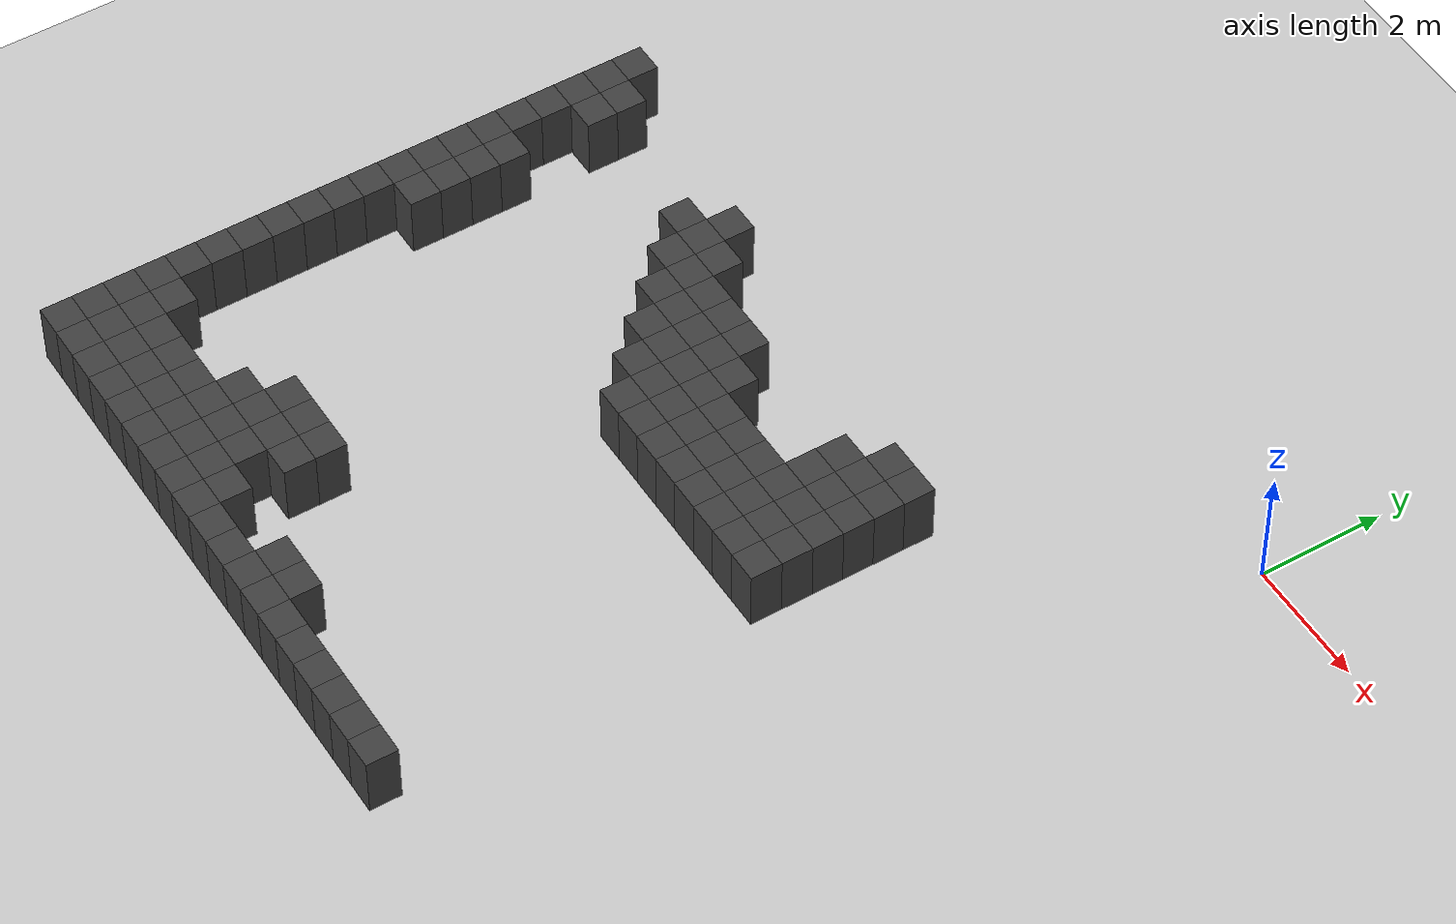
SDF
<sdf version="1.7">
 <world name="map_6610">
  <model name="ground_plane">
   <static>true</static>
   <link name="link">
    <collision name="collision">
     <geometry><plane><normal>0 0 1</normal><size>200 200</size></plane></geometry>
    </collision>
    <visual name="visual">
     <geometry><plane><normal>0 0 1</normal><size>200 200</size></plane></geometry>
     <material><ambient>0.8 0.8 0.8 1</ambient><diffuse>0.8 0.8 0.8 1</diffuse></material>
    </visual>
   </link>
  </model>
  <model name="maze_environment">
   <static>true</static>
   <link name="wall_340">
    <pose>-12.250 -2.750 0.500 0 0 0</pose>
    <collision name="col"><geometry><box><size>0.5 0.5 1.0</size></box></geometry></collision>
    <visual name="vis">
     <geometry><box><size>0.5 0.5 1.0</size></box></geometry>
     <material><ambient>0.15 0.15 0.15 1</ambient><diffuse>0.25 0.25 0.25 1</diffuse></material>
    </visual>
   </link>
   <link name="wall_346">
    <pose>-12.250 -3.250 0.500 0 0 0</pose>
    <collision name="col"><geometry><box><size>0.5 0.5 1.0</size></box></geometry></collision>
    <visual name="vis">
     <geometry><box><size>0.5 0.5 1.0</size></box></geometry>
     <material><ambient>0.15 0.15 0.15 1</ambient><diffuse>0.25 0.25 0.25 1</diffuse></material>
    </visual>
   </link>
   <link name="wall_347">
    <pose>-11.750 -3.250 0.500 0 0 0</pose>
    <collision name="col"><geometry><box><size>0.5 0.5 1.0</size></box></geometry></collision>
    <visual name="vis">
     <geometry><box><size>0.5 0.5 1.0</size></box></geometry>
     <material><ambient>0.15 0.15 0.15 1</ambient><diffuse>0.25 0.25 0.25 1</diffuse></material>
    </visual>
   </link>
   <link name="wall_348">
    <pose>-8.750 -3.250 0.500 0 0 0</pose>
    <collision name="col"><geometry><box><size>0.5 0.5 1.0</size></box></geometry></collision>
    <visual name="vis">
     <geometry><box><size>0.5 0.5 1.0</size></box></geometry>
     <material><ambient>0.15 0.15 0.15 1</ambient><diffuse>0.25 0.25 0.25 1</diffuse></material>
    </visual>
   </link>
   <link name="wall_354">
    <pose>-12.250 -3.750 0.500 0 0 0</pose>
    <collision name="col"><geometry><box><size>0.5 0.5 1.0</size></box></geometry></collision>
    <visual name="vis">
     <geometry><box><size>0.5 0.5 1.0</size></box></geometry>
     <material><ambient>0.15 0.15 0.15 1</ambient><diffuse>0.25 0.25 0.25 1</diffuse></material>
    </visual>
   </link>
   <link name="wall_355">
    <pose>-11.750 -3.750 0.500 0 0 0</pose>
    <collision name="col"><geometry><box><size>0.5 0.5 1.0</size></box></geometry></collision>
    <visual name="vis">
     <geometry><box><size>0.5 0.5 1.0</size></box></geometry>
     <material><ambient>0.15 0.15 0.15 1</ambient><diffuse>0.25 0.25 0.25 1</diffuse></material>
    </visual>
   </link>
   <link name="wall_356">
    <pose>-9.250 -3.750 0.500 0 0 0</pose>
    <collision name="col"><geometry><box><size>0.5 0.5 1.0</size></box></geometry></collision>
    <visual name="vis">
     <geometry><box><size>0.5 0.5 1.0</size></box></geometry>
     <material><ambient>0.15 0.15 0.15 1</ambient><diffuse>0.25 0.25 0.25 1</diffuse></material>
    </visual>
   </link>
   <link name="wall_357">
    <pose>-8.750 -3.750 0.500 0 0 0</pose>
    <collision name="col"><geometry><box><size>0.5 0.5 1.0</size></box></geometry></collision>
    <visual name="vis">
     <geometry><box><size>0.5 0.5 1.0</size></box></geometry>
     <material><ambient>0.15 0.15 0.15 1</ambient><diffuse>0.25 0.25 0.25 1</diffuse></material>
    </visual>
   </link>
   <link name="wall_358">
    <pose>-8.250 -3.750 0.500 0 0 0</pose>
    <collision name="col"><geometry><box><size>0.5 0.5 1.0</size></box></geometry></collision>
    <visual name="vis">
     <geometry><box><size>0.5 0.5 1.0</size></box></geometry>
     <material><ambient>0.15 0.15 0.15 1</ambient><diffuse>0.25 0.25 0.25 1</diffuse></material>
    </visual>
   </link>
   <link name="wall_359">
    <pose>-3.750 -3.750 0.500 0 0 0</pose>
    <collision name="col"><geometry><box><size>0.5 0.5 1.0</size></box></geometry></collision>
    <visual name="vis">
     <geometry><box><size>0.5 0.5 1.0</size></box></geometry>
     <material><ambient>0.15 0.15 0.15 1</ambient><diffuse>0.25 0.25 0.25 1</diffuse></material>
    </visual>
   </link>
   <link name="wall_360">
    <pose>-3.250 -3.750 0.500 0 0 0</pose>
    <collision name="col"><geometry><box><size>0.5 0.5 1.0</size></box></geometry></collision>
    <visual name="vis">
     <geometry><box><size>0.5 0.5 1.0</size></box></geometry>
     <material><ambient>0.15 0.15 0.15 1</ambient><diffuse>0.25 0.25 0.25 1</diffuse></material>
    </visual>
   </link>
   <link name="wall_366">
    <pose>-12.250 -4.250 0.500 0 0 0</pose>
    <collision name="col"><geometry><box><size>0.5 0.5 1.0</size></box></geometry></collision>
    <visual name="vis">
     <geometry><box><size>0.5 0.5 1.0</size></box></geometry>
     <material><ambient>0.15 0.15 0.15 1</ambient><diffuse>0.25 0.25 0.25 1</diffuse></material>
    </visual>
   </link>
   <link name="wall_367">
    <pose>-8.750 -4.250 0.500 0 0 0</pose>
    <collision name="col"><geometry><box><size>0.5 0.5 1.0</size></box></geometry></collision>
    <visual name="vis">
     <geometry><box><size>0.5 0.5 1.0</size></box></geometry>
     <material><ambient>0.15 0.15 0.15 1</ambient><diffuse>0.25 0.25 0.25 1</diffuse></material>
    </visual>
   </link>
   <link name="wall_368">
    <pose>-8.250 -4.250 0.500 0 0 0</pose>
    <collision name="col"><geometry><box><size>0.5 0.5 1.0</size></box></geometry></collision>
    <visual name="vis">
     <geometry><box><size>0.5 0.5 1.0</size></box></geometry>
     <material><ambient>0.15 0.15 0.15 1</ambient><diffuse>0.25 0.25 0.25 1</diffuse></material>
    </visual>
   </link>
   <link name="wall_369">
    <pose>-7.750 -4.250 0.500 0 0 0</pose>
    <collision name="col"><geometry><box><size>0.5 0.5 1.0</size></box></geometry></collision>
    <visual name="vis">
     <geometry><box><size>0.5 0.5 1.0</size></box></geometry>
     <material><ambient>0.15 0.15 0.15 1</ambient><diffuse>0.25 0.25 0.25 1</diffuse></material>
    </visual>
   </link>
   <link name="wall_370">
    <pose>-7.250 -4.250 0.500 0 0 0</pose>
    <collision name="col"><geometry><box><size>0.5 0.5 1.0</size></box></geometry></collision>
    <visual name="vis">
     <geometry><box><size>0.5 0.5 1.0</size></box></geometry>
     <material><ambient>0.15 0.15 0.15 1</ambient><diffuse>0.25 0.25 0.25 1</diffuse></material>
    </visual>
   </link>
   <link name="wall_371">
    <pose>-6.750 -4.250 0.500 0 0 0</pose>
    <collision name="col"><geometry><box><size>0.5 0.5 1.0</size></box></geometry></collision>
    <visual name="vis">
     <geometry><box><size>0.5 0.5 1.0</size></box></geometry>
     <material><ambient>0.15 0.15 0.15 1</ambient><diffuse>0.25 0.25 0.25 1</diffuse></material>
    </visual>
   </link>
   <link name="wall_372">
    <pose>-4.250 -4.250 0.500 0 0 0</pose>
    <collision name="col"><geometry><box><size>0.5 0.5 1.0</size></box></geometry></collision>
    <visual name="vis">
     <geometry><box><size>0.5 0.5 1.0</size></box></geometry>
     <material><ambient>0.15 0.15 0.15 1</ambient><diffuse>0.25 0.25 0.25 1</diffuse></material>
    </visual>
   </link>
   <link name="wall_373">
    <pose>-3.750 -4.250 0.500 0 0 0</pose>
    <collision name="col"><geometry><box><size>0.5 0.5 1.0</size></box></geometry></collision>
    <visual name="vis">
     <geometry><box><size>0.5 0.5 1.0</size></box></geometry>
     <material><ambient>0.15 0.15 0.15 1</ambient><diffuse>0.25 0.25 0.25 1</diffuse></material>
    </visual>
   </link>
   <link name="wall_374">
    <pose>-3.250 -4.250 0.500 0 0 0</pose>
    <collision name="col"><geometry><box><size>0.5 0.5 1.0</size></box></geometry></collision>
    <visual name="vis">
     <geometry><box><size>0.5 0.5 1.0</size></box></geometry>
     <material><ambient>0.15 0.15 0.15 1</ambient><diffuse>0.25 0.25 0.25 1</diffuse></material>
    </visual>
   </link>
   <link name="wall_381">
    <pose>-12.250 -4.750 0.500 0 0 0</pose>
    <collision name="col"><geometry><box><size>0.5 0.5 1.0</size></box></geometry></collision>
    <visual name="vis">
     <geometry><box><size>0.5 0.5 1.0</size></box></geometry>
     <material><ambient>0.15 0.15 0.15 1</ambient><diffuse>0.25 0.25 0.25 1</diffuse></material>
    </visual>
   </link>
   <link name="wall_382">
    <pose>-8.250 -4.750 0.500 0 0 0</pose>
    <collision name="col"><geometry><box><size>0.5 0.5 1.0</size></box></geometry></collision>
    <visual name="vis">
     <geometry><box><size>0.5 0.5 1.0</size></box></geometry>
     <material><ambient>0.15 0.15 0.15 1</ambient><diffuse>0.25 0.25 0.25 1</diffuse></material>
    </visual>
   </link>
   <link name="wall_383">
    <pose>-7.750 -4.750 0.500 0 0 0</pose>
    <collision name="col"><geometry><box><size>0.5 0.5 1.0</size></box></geometry></collision>
    <visual name="vis">
     <geometry><box><size>0.5 0.5 1.0</size></box></geometry>
     <material><ambient>0.15 0.15 0.15 1</ambient><diffuse>0.25 0.25 0.25 1</diffuse></material>
    </visual>
   </link>
   <link name="wall_384">
    <pose>-7.250 -4.750 0.500 0 0 0</pose>
    <collision name="col"><geometry><box><size>0.5 0.5 1.0</size></box></geometry></collision>
    <visual name="vis">
     <geometry><box><size>0.5 0.5 1.0</size></box></geometry>
     <material><ambient>0.15 0.15 0.15 1</ambient><diffuse>0.25 0.25 0.25 1</diffuse></material>
    </visual>
   </link>
   <link name="wall_385">
    <pose>-6.750 -4.750 0.500 0 0 0</pose>
    <collision name="col"><geometry><box><size>0.5 0.5 1.0</size></box></geometry></collision>
    <visual name="vis">
     <geometry><box><size>0.5 0.5 1.0</size></box></geometry>
     <material><ambient>0.15 0.15 0.15 1</ambient><diffuse>0.25 0.25 0.25 1</diffuse></material>
    </visual>
   </link>
   <link name="wall_386">
    <pose>-6.250 -4.750 0.500 0 0 0</pose>
    <collision name="col"><geometry><box><size>0.5 0.5 1.0</size></box></geometry></collision>
    <visual name="vis">
     <geometry><box><size>0.5 0.5 1.0</size></box></geometry>
     <material><ambient>0.15 0.15 0.15 1</ambient><diffuse>0.25 0.25 0.25 1</diffuse></material>
    </visual>
   </link>
   <link name="wall_387">
    <pose>-4.250 -4.750 0.500 0 0 0</pose>
    <collision name="col"><geometry><box><size>0.5 0.5 1.0</size></box></geometry></collision>
    <visual name="vis">
     <geometry><box><size>0.5 0.5 1.0</size></box></geometry>
     <material><ambient>0.15 0.15 0.15 1</ambient><diffuse>0.25 0.25 0.25 1</diffuse></material>
    </visual>
   </link>
   <link name="wall_388">
    <pose>-3.750 -4.750 0.500 0 0 0</pose>
    <collision name="col"><geometry><box><size>0.5 0.5 1.0</size></box></geometry></collision>
    <visual name="vis">
     <geometry><box><size>0.5 0.5 1.0</size></box></geometry>
     <material><ambient>0.15 0.15 0.15 1</ambient><diffuse>0.25 0.25 0.25 1</diffuse></material>
    </visual>
   </link>
   <link name="wall_389">
    <pose>-3.250 -4.750 0.500 0 0 0</pose>
    <collision name="col"><geometry><box><size>0.5 0.5 1.0</size></box></geometry></collision>
    <visual name="vis">
     <geometry><box><size>0.5 0.5 1.0</size></box></geometry>
     <material><ambient>0.15 0.15 0.15 1</ambient><diffuse>0.25 0.25 0.25 1</diffuse></material>
    </visual>
   </link>
   <link name="wall_397">
    <pose>-12.250 -5.250 0.500 0 0 0</pose>
    <collision name="col"><geometry><box><size>0.5 0.5 1.0</size></box></geometry></collision>
    <visual name="vis">
     <geometry><box><size>0.5 0.5 1.0</size></box></geometry>
     <material><ambient>0.15 0.15 0.15 1</ambient><diffuse>0.25 0.25 0.25 1</diffuse></material>
    </visual>
   </link>
   <link name="wall_398">
    <pose>-11.750 -5.250 0.500 0 0 0</pose>
    <collision name="col"><geometry><box><size>0.5 0.5 1.0</size></box></geometry></collision>
    <visual name="vis">
     <geometry><box><size>0.5 0.5 1.0</size></box></geometry>
     <material><ambient>0.15 0.15 0.15 1</ambient><diffuse>0.25 0.25 0.25 1</diffuse></material>
    </visual>
   </link>
   <link name="wall_399">
    <pose>-7.750 -5.250 0.500 0 0 0</pose>
    <collision name="col"><geometry><box><size>0.5 0.5 1.0</size></box></geometry></collision>
    <visual name="vis">
     <geometry><box><size>0.5 0.5 1.0</size></box></geometry>
     <material><ambient>0.15 0.15 0.15 1</ambient><diffuse>0.25 0.25 0.25 1</diffuse></material>
    </visual>
   </link>
   <link name="wall_400">
    <pose>-7.250 -5.250 0.500 0 0 0</pose>
    <collision name="col"><geometry><box><size>0.5 0.5 1.0</size></box></geometry></collision>
    <visual name="vis">
     <geometry><box><size>0.5 0.5 1.0</size></box></geometry>
     <material><ambient>0.15 0.15 0.15 1</ambient><diffuse>0.25 0.25 0.25 1</diffuse></material>
    </visual>
   </link>
   <link name="wall_401">
    <pose>-6.750 -5.250 0.500 0 0 0</pose>
    <collision name="col"><geometry><box><size>0.5 0.5 1.0</size></box></geometry></collision>
    <visual name="vis">
     <geometry><box><size>0.5 0.5 1.0</size></box></geometry>
     <material><ambient>0.15 0.15 0.15 1</ambient><diffuse>0.25 0.25 0.25 1</diffuse></material>
    </visual>
   </link>
   <link name="wall_402">
    <pose>-6.250 -5.250 0.500 0 0 0</pose>
    <collision name="col"><geometry><box><size>0.5 0.5 1.0</size></box></geometry></collision>
    <visual name="vis">
     <geometry><box><size>0.5 0.5 1.0</size></box></geometry>
     <material><ambient>0.15 0.15 0.15 1</ambient><diffuse>0.25 0.25 0.25 1</diffuse></material>
    </visual>
   </link>
   <link name="wall_403">
    <pose>-5.750 -5.250 0.500 0 0 0</pose>
    <collision name="col"><geometry><box><size>0.5 0.5 1.0</size></box></geometry></collision>
    <visual name="vis">
     <geometry><box><size>0.5 0.5 1.0</size></box></geometry>
     <material><ambient>0.15 0.15 0.15 1</ambient><diffuse>0.25 0.25 0.25 1</diffuse></material>
    </visual>
   </link>
   <link name="wall_404">
    <pose>-5.250 -5.250 0.500 0 0 0</pose>
    <collision name="col"><geometry><box><size>0.5 0.5 1.0</size></box></geometry></collision>
    <visual name="vis">
     <geometry><box><size>0.5 0.5 1.0</size></box></geometry>
     <material><ambient>0.15 0.15 0.15 1</ambient><diffuse>0.25 0.25 0.25 1</diffuse></material>
    </visual>
   </link>
   <link name="wall_405">
    <pose>-4.750 -5.250 0.500 0 0 0</pose>
    <collision name="col"><geometry><box><size>0.5 0.5 1.0</size></box></geometry></collision>
    <visual name="vis">
     <geometry><box><size>0.5 0.5 1.0</size></box></geometry>
     <material><ambient>0.15 0.15 0.15 1</ambient><diffuse>0.25 0.25 0.25 1</diffuse></material>
    </visual>
   </link>
   <link name="wall_406">
    <pose>-4.250 -5.250 0.500 0 0 0</pose>
    <collision name="col"><geometry><box><size>0.5 0.5 1.0</size></box></geometry></collision>
    <visual name="vis">
     <geometry><box><size>0.5 0.5 1.0</size></box></geometry>
     <material><ambient>0.15 0.15 0.15 1</ambient><diffuse>0.25 0.25 0.25 1</diffuse></material>
    </visual>
   </link>
   <link name="wall_407">
    <pose>-3.750 -5.250 0.500 0 0 0</pose>
    <collision name="col"><geometry><box><size>0.5 0.5 1.0</size></box></geometry></collision>
    <visual name="vis">
     <geometry><box><size>0.5 0.5 1.0</size></box></geometry>
     <material><ambient>0.15 0.15 0.15 1</ambient><diffuse>0.25 0.25 0.25 1</diffuse></material>
    </visual>
   </link>
   <link name="wall_408">
    <pose>-3.250 -5.250 0.500 0 0 0</pose>
    <collision name="col"><geometry><box><size>0.5 0.5 1.0</size></box></geometry></collision>
    <visual name="vis">
     <geometry><box><size>0.5 0.5 1.0</size></box></geometry>
     <material><ambient>0.15 0.15 0.15 1</ambient><diffuse>0.25 0.25 0.25 1</diffuse></material>
    </visual>
   </link>
   <link name="wall_418">
    <pose>-12.250 -5.750 0.500 0 0 0</pose>
    <collision name="col"><geometry><box><size>0.5 0.5 1.0</size></box></geometry></collision>
    <visual name="vis">
     <geometry><box><size>0.5 0.5 1.0</size></box></geometry>
     <material><ambient>0.15 0.15 0.15 1</ambient><diffuse>0.25 0.25 0.25 1</diffuse></material>
    </visual>
   </link>
   <link name="wall_419">
    <pose>-11.750 -5.750 0.500 0 0 0</pose>
    <collision name="col"><geometry><box><size>0.5 0.5 1.0</size></box></geometry></collision>
    <visual name="vis">
     <geometry><box><size>0.5 0.5 1.0</size></box></geometry>
     <material><ambient>0.15 0.15 0.15 1</ambient><diffuse>0.25 0.25 0.25 1</diffuse></material>
    </visual>
   </link>
   <link name="wall_420">
    <pose>-7.250 -5.750 0.500 0 0 0</pose>
    <collision name="col"><geometry><box><size>0.5 0.5 1.0</size></box></geometry></collision>
    <visual name="vis">
     <geometry><box><size>0.5 0.5 1.0</size></box></geometry>
     <material><ambient>0.15 0.15 0.15 1</ambient><diffuse>0.25 0.25 0.25 1</diffuse></material>
    </visual>
   </link>
   <link name="wall_421">
    <pose>-6.750 -5.750 0.500 0 0 0</pose>
    <collision name="col"><geometry><box><size>0.5 0.5 1.0</size></box></geometry></collision>
    <visual name="vis">
     <geometry><box><size>0.5 0.5 1.0</size></box></geometry>
     <material><ambient>0.15 0.15 0.15 1</ambient><diffuse>0.25 0.25 0.25 1</diffuse></material>
    </visual>
   </link>
   <link name="wall_422">
    <pose>-6.250 -5.750 0.500 0 0 0</pose>
    <collision name="col"><geometry><box><size>0.5 0.5 1.0</size></box></geometry></collision>
    <visual name="vis">
     <geometry><box><size>0.5 0.5 1.0</size></box></geometry>
     <material><ambient>0.15 0.15 0.15 1</ambient><diffuse>0.25 0.25 0.25 1</diffuse></material>
    </visual>
   </link>
   <link name="wall_423">
    <pose>-5.750 -5.750 0.500 0 0 0</pose>
    <collision name="col"><geometry><box><size>0.5 0.5 1.0</size></box></geometry></collision>
    <visual name="vis">
     <geometry><box><size>0.5 0.5 1.0</size></box></geometry>
     <material><ambient>0.15 0.15 0.15 1</ambient><diffuse>0.25 0.25 0.25 1</diffuse></material>
    </visual>
   </link>
   <link name="wall_424">
    <pose>-5.250 -5.750 0.500 0 0 0</pose>
    <collision name="col"><geometry><box><size>0.5 0.5 1.0</size></box></geometry></collision>
    <visual name="vis">
     <geometry><box><size>0.5 0.5 1.0</size></box></geometry>
     <material><ambient>0.15 0.15 0.15 1</ambient><diffuse>0.25 0.25 0.25 1</diffuse></material>
    </visual>
   </link>
   <link name="wall_425">
    <pose>-4.750 -5.750 0.500 0 0 0</pose>
    <collision name="col"><geometry><box><size>0.5 0.5 1.0</size></box></geometry></collision>
    <visual name="vis">
     <geometry><box><size>0.5 0.5 1.0</size></box></geometry>
     <material><ambient>0.15 0.15 0.15 1</ambient><diffuse>0.25 0.25 0.25 1</diffuse></material>
    </visual>
   </link>
   <link name="wall_426">
    <pose>-4.250 -5.750 0.500 0 0 0</pose>
    <collision name="col"><geometry><box><size>0.5 0.5 1.0</size></box></geometry></collision>
    <visual name="vis">
     <geometry><box><size>0.5 0.5 1.0</size></box></geometry>
     <material><ambient>0.15 0.15 0.15 1</ambient><diffuse>0.25 0.25 0.25 1</diffuse></material>
    </visual>
   </link>
   <link name="wall_427">
    <pose>-3.750 -5.750 0.500 0 0 0</pose>
    <collision name="col"><geometry><box><size>0.5 0.5 1.0</size></box></geometry></collision>
    <visual name="vis">
     <geometry><box><size>0.5 0.5 1.0</size></box></geometry>
     <material><ambient>0.15 0.15 0.15 1</ambient><diffuse>0.25 0.25 0.25 1</diffuse></material>
    </visual>
   </link>
   <link name="wall_428">
    <pose>-3.250 -5.750 0.500 0 0 0</pose>
    <collision name="col"><geometry><box><size>0.5 0.5 1.0</size></box></geometry></collision>
    <visual name="vis">
     <geometry><box><size>0.5 0.5 1.0</size></box></geometry>
     <material><ambient>0.15 0.15 0.15 1</ambient><diffuse>0.25 0.25 0.25 1</diffuse></material>
    </visual>
   </link>
   <link name="wall_438">
    <pose>-12.250 -6.250 0.500 0 0 0</pose>
    <collision name="col"><geometry><box><size>0.5 0.5 1.0</size></box></geometry></collision>
    <visual name="vis">
     <geometry><box><size>0.5 0.5 1.0</size></box></geometry>
     <material><ambient>0.15 0.15 0.15 1</ambient><diffuse>0.25 0.25 0.25 1</diffuse></material>
    </visual>
   </link>
   <link name="wall_439">
    <pose>-11.750 -6.250 0.500 0 0 0</pose>
    <collision name="col"><geometry><box><size>0.5 0.5 1.0</size></box></geometry></collision>
    <visual name="vis">
     <geometry><box><size>0.5 0.5 1.0</size></box></geometry>
     <material><ambient>0.15 0.15 0.15 1</ambient><diffuse>0.25 0.25 0.25 1</diffuse></material>
    </visual>
   </link>
   <link name="wall_440">
    <pose>-6.750 -6.250 0.500 0 0 0</pose>
    <collision name="col"><geometry><box><size>0.5 0.5 1.0</size></box></geometry></collision>
    <visual name="vis">
     <geometry><box><size>0.5 0.5 1.0</size></box></geometry>
     <material><ambient>0.15 0.15 0.15 1</ambient><diffuse>0.25 0.25 0.25 1</diffuse></material>
    </visual>
   </link>
   <link name="wall_441">
    <pose>-6.250 -6.250 0.500 0 0 0</pose>
    <collision name="col"><geometry><box><size>0.5 0.5 1.0</size></box></geometry></collision>
    <visual name="vis">
     <geometry><box><size>0.5 0.5 1.0</size></box></geometry>
     <material><ambient>0.15 0.15 0.15 1</ambient><diffuse>0.25 0.25 0.25 1</diffuse></material>
    </visual>
   </link>
   <link name="wall_442">
    <pose>-5.750 -6.250 0.500 0 0 0</pose>
    <collision name="col"><geometry><box><size>0.5 0.5 1.0</size></box></geometry></collision>
    <visual name="vis">
     <geometry><box><size>0.5 0.5 1.0</size></box></geometry>
     <material><ambient>0.15 0.15 0.15 1</ambient><diffuse>0.25 0.25 0.25 1</diffuse></material>
    </visual>
   </link>
   <link name="wall_443">
    <pose>-5.250 -6.250 0.500 0 0 0</pose>
    <collision name="col"><geometry><box><size>0.5 0.5 1.0</size></box></geometry></collision>
    <visual name="vis">
     <geometry><box><size>0.5 0.5 1.0</size></box></geometry>
     <material><ambient>0.15 0.15 0.15 1</ambient><diffuse>0.25 0.25 0.25 1</diffuse></material>
    </visual>
   </link>
   <link name="wall_444">
    <pose>-4.750 -6.250 0.500 0 0 0</pose>
    <collision name="col"><geometry><box><size>0.5 0.5 1.0</size></box></geometry></collision>
    <visual name="vis">
     <geometry><box><size>0.5 0.5 1.0</size></box></geometry>
     <material><ambient>0.15 0.15 0.15 1</ambient><diffuse>0.25 0.25 0.25 1</diffuse></material>
    </visual>
   </link>
   <link name="wall_445">
    <pose>-4.250 -6.250 0.500 0 0 0</pose>
    <collision name="col"><geometry><box><size>0.5 0.5 1.0</size></box></geometry></collision>
    <visual name="vis">
     <geometry><box><size>0.5 0.5 1.0</size></box></geometry>
     <material><ambient>0.15 0.15 0.15 1</ambient><diffuse>0.25 0.25 0.25 1</diffuse></material>
    </visual>
   </link>
   <link name="wall_446">
    <pose>-3.750 -6.250 0.500 0 0 0</pose>
    <collision name="col"><geometry><box><size>0.5 0.5 1.0</size></box></geometry></collision>
    <visual name="vis">
     <geometry><box><size>0.5 0.5 1.0</size></box></geometry>
     <material><ambient>0.15 0.15 0.15 1</ambient><diffuse>0.25 0.25 0.25 1</diffuse></material>
    </visual>
   </link>
   <link name="wall_447">
    <pose>-3.250 -6.250 0.500 0 0 0</pose>
    <collision name="col"><geometry><box><size>0.5 0.5 1.0</size></box></geometry></collision>
    <visual name="vis">
     <geometry><box><size>0.5 0.5 1.0</size></box></geometry>
     <material><ambient>0.15 0.15 0.15 1</ambient><diffuse>0.25 0.25 0.25 1</diffuse></material>
    </visual>
   </link>
   <link name="wall_452">
    <pose>-12.250 -6.750 0.500 0 0 0</pose>
    <collision name="col"><geometry><box><size>0.5 0.5 1.0</size></box></geometry></collision>
    <visual name="vis">
     <geometry><box><size>0.5 0.5 1.0</size></box></geometry>
     <material><ambient>0.15 0.15 0.15 1</ambient><diffuse>0.25 0.25 0.25 1</diffuse></material>
    </visual>
   </link>
   <link name="wall_453">
    <pose>-11.750 -6.750 0.500 0 0 0</pose>
    <collision name="col"><geometry><box><size>0.5 0.5 1.0</size></box></geometry></collision>
    <visual name="vis">
     <geometry><box><size>0.5 0.5 1.0</size></box></geometry>
     <material><ambient>0.15 0.15 0.15 1</ambient><diffuse>0.25 0.25 0.25 1</diffuse></material>
    </visual>
   </link>
   <link name="wall_456">
    <pose>-12.250 -7.250 0.500 0 0 0</pose>
    <collision name="col"><geometry><box><size>0.5 0.5 1.0</size></box></geometry></collision>
    <visual name="vis">
     <geometry><box><size>0.5 0.5 1.0</size></box></geometry>
     <material><ambient>0.15 0.15 0.15 1</ambient><diffuse>0.25 0.25 0.25 1</diffuse></material>
    </visual>
   </link>
   <link name="wall_459">
    <pose>-12.250 -7.750 0.500 0 0 0</pose>
    <collision name="col"><geometry><box><size>0.5 0.5 1.0</size></box></geometry></collision>
    <visual name="vis">
     <geometry><box><size>0.5 0.5 1.0</size></box></geometry>
     <material><ambient>0.15 0.15 0.15 1</ambient><diffuse>0.25 0.25 0.25 1</diffuse></material>
    </visual>
   </link>
   <link name="wall_462">
    <pose>-12.250 -8.250 0.500 0 0 0</pose>
    <collision name="col"><geometry><box><size>0.5 0.5 1.0</size></box></geometry></collision>
    <visual name="vis">
     <geometry><box><size>0.5 0.5 1.0</size></box></geometry>
     <material><ambient>0.15 0.15 0.15 1</ambient><diffuse>0.25 0.25 0.25 1</diffuse></material>
    </visual>
   </link>
   <link name="wall_465">
    <pose>-12.250 -8.750 0.500 0 0 0</pose>
    <collision name="col"><geometry><box><size>0.5 0.5 1.0</size></box></geometry></collision>
    <visual name="vis">
     <geometry><box><size>0.5 0.5 1.0</size></box></geometry>
     <material><ambient>0.15 0.15 0.15 1</ambient><diffuse>0.25 0.25 0.25 1</diffuse></material>
    </visual>
   </link>
   <link name="wall_468">
    <pose>-12.250 -9.250 0.500 0 0 0</pose>
    <collision name="col"><geometry><box><size>0.5 0.5 1.0</size></box></geometry></collision>
    <visual name="vis">
     <geometry><box><size>0.5 0.5 1.0</size></box></geometry>
     <material><ambient>0.15 0.15 0.15 1</ambient><diffuse>0.25 0.25 0.25 1</diffuse></material>
    </visual>
   </link>
   <link name="wall_471">
    <pose>-12.250 -9.750 0.500 0 0 0</pose>
    <collision name="col"><geometry><box><size>0.5 0.5 1.0</size></box></geometry></collision>
    <visual name="vis">
     <geometry><box><size>0.5 0.5 1.0</size></box></geometry>
     <material><ambient>0.15 0.15 0.15 1</ambient><diffuse>0.25 0.25 0.25 1</diffuse></material>
    </visual>
   </link>
   <link name="wall_478">
    <pose>-12.250 -10.250 0.500 0 0 0</pose>
    <collision name="col"><geometry><box><size>0.5 0.5 1.0</size></box></geometry></collision>
    <visual name="vis">
     <geometry><box><size>0.5 0.5 1.0</size></box></geometry>
     <material><ambient>0.15 0.15 0.15 1</ambient><diffuse>0.25 0.25 0.25 1</diffuse></material>
    </visual>
   </link>
   <link name="wall_479">
    <pose>-9.250 -10.250 0.500 0 0 0</pose>
    <collision name="col"><geometry><box><size>0.5 0.5 1.0</size></box></geometry></collision>
    <visual name="vis">
     <geometry><box><size>0.5 0.5 1.0</size></box></geometry>
     <material><ambient>0.15 0.15 0.15 1</ambient><diffuse>0.25 0.25 0.25 1</diffuse></material>
    </visual>
   </link>
   <link name="wall_480">
    <pose>-8.750 -10.250 0.500 0 0 0</pose>
    <collision name="col"><geometry><box><size>0.5 0.5 1.0</size></box></geometry></collision>
    <visual name="vis">
     <geometry><box><size>0.5 0.5 1.0</size></box></geometry>
     <material><ambient>0.15 0.15 0.15 1</ambient><diffuse>0.25 0.25 0.25 1</diffuse></material>
    </visual>
   </link>
   <link name="wall_481">
    <pose>-8.250 -10.250 0.500 0 0 0</pose>
    <collision name="col"><geometry><box><size>0.5 0.5 1.0</size></box></geometry></collision>
    <visual name="vis">
     <geometry><box><size>0.5 0.5 1.0</size></box></geometry>
     <material><ambient>0.15 0.15 0.15 1</ambient><diffuse>0.25 0.25 0.25 1</diffuse></material>
    </visual>
   </link>
   <link name="wall_489">
    <pose>-12.250 -10.750 0.500 0 0 0</pose>
    <collision name="col"><geometry><box><size>0.5 0.5 1.0</size></box></geometry></collision>
    <visual name="vis">
     <geometry><box><size>0.5 0.5 1.0</size></box></geometry>
     <material><ambient>0.15 0.15 0.15 1</ambient><diffuse>0.25 0.25 0.25 1</diffuse></material>
    </visual>
   </link>
   <link name="wall_490">
    <pose>-11.750 -10.750 0.500 0 0 0</pose>
    <collision name="col"><geometry><box><size>0.5 0.5 1.0</size></box></geometry></collision>
    <visual name="vis">
     <geometry><box><size>0.5 0.5 1.0</size></box></geometry>
     <material><ambient>0.15 0.15 0.15 1</ambient><diffuse>0.25 0.25 0.25 1</diffuse></material>
    </visual>
   </link>
   <link name="wall_491">
    <pose>-9.750 -10.750 0.500 0 0 0</pose>
    <collision name="col"><geometry><box><size>0.5 0.5 1.0</size></box></geometry></collision>
    <visual name="vis">
     <geometry><box><size>0.5 0.5 1.0</size></box></geometry>
     <material><ambient>0.15 0.15 0.15 1</ambient><diffuse>0.25 0.25 0.25 1</diffuse></material>
    </visual>
   </link>
   <link name="wall_492">
    <pose>-9.250 -10.750 0.500 0 0 0</pose>
    <collision name="col"><geometry><box><size>0.5 0.5 1.0</size></box></geometry></collision>
    <visual name="vis">
     <geometry><box><size>0.5 0.5 1.0</size></box></geometry>
     <material><ambient>0.15 0.15 0.15 1</ambient><diffuse>0.25 0.25 0.25 1</diffuse></material>
    </visual>
   </link>
   <link name="wall_493">
    <pose>-8.750 -10.750 0.500 0 0 0</pose>
    <collision name="col"><geometry><box><size>0.5 0.5 1.0</size></box></geometry></collision>
    <visual name="vis">
     <geometry><box><size>0.5 0.5 1.0</size></box></geometry>
     <material><ambient>0.15 0.15 0.15 1</ambient><diffuse>0.25 0.25 0.25 1</diffuse></material>
    </visual>
   </link>
   <link name="wall_494">
    <pose>-8.250 -10.750 0.500 0 0 0</pose>
    <collision name="col"><geometry><box><size>0.5 0.5 1.0</size></box></geometry></collision>
    <visual name="vis">
     <geometry><box><size>0.5 0.5 1.0</size></box></geometry>
     <material><ambient>0.15 0.15 0.15 1</ambient><diffuse>0.25 0.25 0.25 1</diffuse></material>
    </visual>
   </link>
   <link name="wall_500">
    <pose>-12.250 -11.250 0.500 0 0 0</pose>
    <collision name="col"><geometry><box><size>0.5 0.5 1.0</size></box></geometry></collision>
    <visual name="vis">
     <geometry><box><size>0.5 0.5 1.0</size></box></geometry>
     <material><ambient>0.15 0.15 0.15 1</ambient><diffuse>0.25 0.25 0.25 1</diffuse></material>
    </visual>
   </link>
   <link name="wall_501">
    <pose>-11.750 -11.250 0.500 0 0 0</pose>
    <collision name="col"><geometry><box><size>0.5 0.5 1.0</size></box></geometry></collision>
    <visual name="vis">
     <geometry><box><size>0.5 0.5 1.0</size></box></geometry>
     <material><ambient>0.15 0.15 0.15 1</ambient><diffuse>0.25 0.25 0.25 1</diffuse></material>
    </visual>
   </link>
   <link name="wall_502">
    <pose>-11.250 -11.250 0.500 0 0 0</pose>
    <collision name="col"><geometry><box><size>0.5 0.5 1.0</size></box></geometry></collision>
    <visual name="vis">
     <geometry><box><size>0.5 0.5 1.0</size></box></geometry>
     <material><ambient>0.15 0.15 0.15 1</ambient><diffuse>0.25 0.25 0.25 1</diffuse></material>
    </visual>
   </link>
   <link name="wall_503">
    <pose>-10.750 -11.250 0.500 0 0 0</pose>
    <collision name="col"><geometry><box><size>0.5 0.5 1.0</size></box></geometry></collision>
    <visual name="vis">
     <geometry><box><size>0.5 0.5 1.0</size></box></geometry>
     <material><ambient>0.15 0.15 0.15 1</ambient><diffuse>0.25 0.25 0.25 1</diffuse></material>
    </visual>
   </link>
   <link name="wall_504">
    <pose>-10.250 -11.250 0.500 0 0 0</pose>
    <collision name="col"><geometry><box><size>0.5 0.5 1.0</size></box></geometry></collision>
    <visual name="vis">
     <geometry><box><size>0.5 0.5 1.0</size></box></geometry>
     <material><ambient>0.15 0.15 0.15 1</ambient><diffuse>0.25 0.25 0.25 1</diffuse></material>
    </visual>
   </link>
   <link name="wall_505">
    <pose>-9.750 -11.250 0.500 0 0 0</pose>
    <collision name="col"><geometry><box><size>0.5 0.5 1.0</size></box></geometry></collision>
    <visual name="vis">
     <geometry><box><size>0.5 0.5 1.0</size></box></geometry>
     <material><ambient>0.15 0.15 0.15 1</ambient><diffuse>0.25 0.25 0.25 1</diffuse></material>
    </visual>
   </link>
   <link name="wall_506">
    <pose>-9.250 -11.250 0.500 0 0 0</pose>
    <collision name="col"><geometry><box><size>0.5 0.5 1.0</size></box></geometry></collision>
    <visual name="vis">
     <geometry><box><size>0.5 0.5 1.0</size></box></geometry>
     <material><ambient>0.15 0.15 0.15 1</ambient><diffuse>0.25 0.25 0.25 1</diffuse></material>
    </visual>
   </link>
   <link name="wall_507">
    <pose>-8.750 -11.250 0.500 0 0 0</pose>
    <collision name="col"><geometry><box><size>0.5 0.5 1.0</size></box></geometry></collision>
    <visual name="vis">
     <geometry><box><size>0.5 0.5 1.0</size></box></geometry>
     <material><ambient>0.15 0.15 0.15 1</ambient><diffuse>0.25 0.25 0.25 1</diffuse></material>
    </visual>
   </link>
   <link name="wall_514">
    <pose>-12.250 -11.750 0.500 0 0 0</pose>
    <collision name="col"><geometry><box><size>0.5 0.5 1.0</size></box></geometry></collision>
    <visual name="vis">
     <geometry><box><size>0.5 0.5 1.0</size></box></geometry>
     <material><ambient>0.15 0.15 0.15 1</ambient><diffuse>0.25 0.25 0.25 1</diffuse></material>
    </visual>
   </link>
   <link name="wall_515">
    <pose>-11.750 -11.750 0.500 0 0 0</pose>
    <collision name="col"><geometry><box><size>0.5 0.5 1.0</size></box></geometry></collision>
    <visual name="vis">
     <geometry><box><size>0.5 0.5 1.0</size></box></geometry>
     <material><ambient>0.15 0.15 0.15 1</ambient><diffuse>0.25 0.25 0.25 1</diffuse></material>
    </visual>
   </link>
   <link name="wall_516">
    <pose>-11.250 -11.750 0.500 0 0 0</pose>
    <collision name="col"><geometry><box><size>0.5 0.5 1.0</size></box></geometry></collision>
    <visual name="vis">
     <geometry><box><size>0.5 0.5 1.0</size></box></geometry>
     <material><ambient>0.15 0.15 0.15 1</ambient><diffuse>0.25 0.25 0.25 1</diffuse></material>
    </visual>
   </link>
   <link name="wall_517">
    <pose>-10.750 -11.750 0.500 0 0 0</pose>
    <collision name="col"><geometry><box><size>0.5 0.5 1.0</size></box></geometry></collision>
    <visual name="vis">
     <geometry><box><size>0.5 0.5 1.0</size></box></geometry>
     <material><ambient>0.15 0.15 0.15 1</ambient><diffuse>0.25 0.25 0.25 1</diffuse></material>
    </visual>
   </link>
   <link name="wall_518">
    <pose>-10.250 -11.750 0.500 0 0 0</pose>
    <collision name="col"><geometry><box><size>0.5 0.5 1.0</size></box></geometry></collision>
    <visual name="vis">
     <geometry><box><size>0.5 0.5 1.0</size></box></geometry>
     <material><ambient>0.15 0.15 0.15 1</ambient><diffuse>0.25 0.25 0.25 1</diffuse></material>
    </visual>
   </link>
   <link name="wall_519">
    <pose>-9.750 -11.750 0.500 0 0 0</pose>
    <collision name="col"><geometry><box><size>0.5 0.5 1.0</size></box></geometry></collision>
    <visual name="vis">
     <geometry><box><size>0.5 0.5 1.0</size></box></geometry>
     <material><ambient>0.15 0.15 0.15 1</ambient><diffuse>0.25 0.25 0.25 1</diffuse></material>
    </visual>
   </link>
   <link name="wall_520">
    <pose>-9.250 -11.750 0.500 0 0 0</pose>
    <collision name="col"><geometry><box><size>0.5 0.5 1.0</size></box></geometry></collision>
    <visual name="vis">
     <geometry><box><size>0.5 0.5 1.0</size></box></geometry>
     <material><ambient>0.15 0.15 0.15 1</ambient><diffuse>0.25 0.25 0.25 1</diffuse></material>
    </visual>
   </link>
   <link name="wall_521">
    <pose>-8.750 -11.750 0.500 0 0 0</pose>
    <collision name="col"><geometry><box><size>0.5 0.5 1.0</size></box></geometry></collision>
    <visual name="vis">
     <geometry><box><size>0.5 0.5 1.0</size></box></geometry>
     <material><ambient>0.15 0.15 0.15 1</ambient><diffuse>0.25 0.25 0.25 1</diffuse></material>
    </visual>
   </link>
   <link name="wall_522">
    <pose>-8.250 -11.750 0.500 0 0 0</pose>
    <collision name="col"><geometry><box><size>0.5 0.5 1.0</size></box></geometry></collision>
    <visual name="vis">
     <geometry><box><size>0.5 0.5 1.0</size></box></geometry>
     <material><ambient>0.15 0.15 0.15 1</ambient><diffuse>0.25 0.25 0.25 1</diffuse></material>
    </visual>
   </link>
   <link name="wall_523">
    <pose>-6.750 -11.750 0.500 0 0 0</pose>
    <collision name="col"><geometry><box><size>0.5 0.5 1.0</size></box></geometry></collision>
    <visual name="vis">
     <geometry><box><size>0.5 0.5 1.0</size></box></geometry>
     <material><ambient>0.15 0.15 0.15 1</ambient><diffuse>0.25 0.25 0.25 1</diffuse></material>
    </visual>
   </link>
   <link name="wall_524">
    <pose>-6.250 -11.750 0.500 0 0 0</pose>
    <collision name="col"><geometry><box><size>0.5 0.5 1.0</size></box></geometry></collision>
    <visual name="vis">
     <geometry><box><size>0.5 0.5 1.0</size></box></geometry>
     <material><ambient>0.15 0.15 0.15 1</ambient><diffuse>0.25 0.25 0.25 1</diffuse></material>
    </visual>
   </link>
   <link name="wall_539">
    <pose>-12.250 -12.250 0.500 0 0 0</pose>
    <collision name="col"><geometry><box><size>0.5 0.5 1.0</size></box></geometry></collision>
    <visual name="vis">
     <geometry><box><size>0.5 0.5 1.0</size></box></geometry>
     <material><ambient>0.15 0.15 0.15 1</ambient><diffuse>0.25 0.25 0.25 1</diffuse></material>
    </visual>
   </link>
   <link name="wall_540">
    <pose>-11.750 -12.250 0.500 0 0 0</pose>
    <collision name="col"><geometry><box><size>0.5 0.5 1.0</size></box></geometry></collision>
    <visual name="vis">
     <geometry><box><size>0.5 0.5 1.0</size></box></geometry>
     <material><ambient>0.15 0.15 0.15 1</ambient><diffuse>0.25 0.25 0.25 1</diffuse></material>
    </visual>
   </link>
   <link name="wall_541">
    <pose>-11.250 -12.250 0.500 0 0 0</pose>
    <collision name="col"><geometry><box><size>0.5 0.5 1.0</size></box></geometry></collision>
    <visual name="vis">
     <geometry><box><size>0.5 0.5 1.0</size></box></geometry>
     <material><ambient>0.15 0.15 0.15 1</ambient><diffuse>0.25 0.25 0.25 1</diffuse></material>
    </visual>
   </link>
   <link name="wall_542">
    <pose>-10.750 -12.250 0.500 0 0 0</pose>
    <collision name="col"><geometry><box><size>0.5 0.5 1.0</size></box></geometry></collision>
    <visual name="vis">
     <geometry><box><size>0.5 0.5 1.0</size></box></geometry>
     <material><ambient>0.15 0.15 0.15 1</ambient><diffuse>0.25 0.25 0.25 1</diffuse></material>
    </visual>
   </link>
   <link name="wall_543">
    <pose>-10.250 -12.250 0.500 0 0 0</pose>
    <collision name="col"><geometry><box><size>0.5 0.5 1.0</size></box></geometry></collision>
    <visual name="vis">
     <geometry><box><size>0.5 0.5 1.0</size></box></geometry>
     <material><ambient>0.15 0.15 0.15 1</ambient><diffuse>0.25 0.25 0.25 1</diffuse></material>
    </visual>
   </link>
   <link name="wall_544">
    <pose>-9.750 -12.250 0.500 0 0 0</pose>
    <collision name="col"><geometry><box><size>0.5 0.5 1.0</size></box></geometry></collision>
    <visual name="vis">
     <geometry><box><size>0.5 0.5 1.0</size></box></geometry>
     <material><ambient>0.15 0.15 0.15 1</ambient><diffuse>0.25 0.25 0.25 1</diffuse></material>
    </visual>
   </link>
   <link name="wall_545">
    <pose>-9.250 -12.250 0.500 0 0 0</pose>
    <collision name="col"><geometry><box><size>0.5 0.5 1.0</size></box></geometry></collision>
    <visual name="vis">
     <geometry><box><size>0.5 0.5 1.0</size></box></geometry>
     <material><ambient>0.15 0.15 0.15 1</ambient><diffuse>0.25 0.25 0.25 1</diffuse></material>
    </visual>
   </link>
   <link name="wall_546">
    <pose>-8.750 -12.250 0.500 0 0 0</pose>
    <collision name="col"><geometry><box><size>0.5 0.5 1.0</size></box></geometry></collision>
    <visual name="vis">
     <geometry><box><size>0.5 0.5 1.0</size></box></geometry>
     <material><ambient>0.15 0.15 0.15 1</ambient><diffuse>0.25 0.25 0.25 1</diffuse></material>
    </visual>
   </link>
   <link name="wall_547">
    <pose>-8.250 -12.250 0.500 0 0 0</pose>
    <collision name="col"><geometry><box><size>0.5 0.5 1.0</size></box></geometry></collision>
    <visual name="vis">
     <geometry><box><size>0.5 0.5 1.0</size></box></geometry>
     <material><ambient>0.15 0.15 0.15 1</ambient><diffuse>0.25 0.25 0.25 1</diffuse></material>
    </visual>
   </link>
   <link name="wall_548">
    <pose>-7.750 -12.250 0.500 0 0 0</pose>
    <collision name="col"><geometry><box><size>0.5 0.5 1.0</size></box></geometry></collision>
    <visual name="vis">
     <geometry><box><size>0.5 0.5 1.0</size></box></geometry>
     <material><ambient>0.15 0.15 0.15 1</ambient><diffuse>0.25 0.25 0.25 1</diffuse></material>
    </visual>
   </link>
   <link name="wall_549">
    <pose>-7.250 -12.250 0.500 0 0 0</pose>
    <collision name="col"><geometry><box><size>0.5 0.5 1.0</size></box></geometry></collision>
    <visual name="vis">
     <geometry><box><size>0.5 0.5 1.0</size></box></geometry>
     <material><ambient>0.15 0.15 0.15 1</ambient><diffuse>0.25 0.25 0.25 1</diffuse></material>
    </visual>
   </link>
   <link name="wall_550">
    <pose>-6.750 -12.250 0.500 0 0 0</pose>
    <collision name="col"><geometry><box><size>0.5 0.5 1.0</size></box></geometry></collision>
    <visual name="vis">
     <geometry><box><size>0.5 0.5 1.0</size></box></geometry>
     <material><ambient>0.15 0.15 0.15 1</ambient><diffuse>0.25 0.25 0.25 1</diffuse></material>
    </visual>
   </link>
   <link name="wall_551">
    <pose>-6.250 -12.250 0.500 0 0 0</pose>
    <collision name="col"><geometry><box><size>0.5 0.5 1.0</size></box></geometry></collision>
    <visual name="vis">
     <geometry><box><size>0.5 0.5 1.0</size></box></geometry>
     <material><ambient>0.15 0.15 0.15 1</ambient><diffuse>0.25 0.25 0.25 1</diffuse></material>
    </visual>
   </link>
   <link name="wall_552">
    <pose>-5.750 -12.250 0.500 0 0 0</pose>
    <collision name="col"><geometry><box><size>0.5 0.5 1.0</size></box></geometry></collision>
    <visual name="vis">
     <geometry><box><size>0.5 0.5 1.0</size></box></geometry>
     <material><ambient>0.15 0.15 0.15 1</ambient><diffuse>0.25 0.25 0.25 1</diffuse></material>
    </visual>
   </link>
   <link name="wall_553">
    <pose>-5.250 -12.250 0.500 0 0 0</pose>
    <collision name="col"><geometry><box><size>0.5 0.5 1.0</size></box></geometry></collision>
    <visual name="vis">
     <geometry><box><size>0.5 0.5 1.0</size></box></geometry>
     <material><ambient>0.15 0.15 0.15 1</ambient><diffuse>0.25 0.25 0.25 1</diffuse></material>
    </visual>
   </link>
   <link name="wall_554">
    <pose>-4.750 -12.250 0.500 0 0 0</pose>
    <collision name="col"><geometry><box><size>0.5 0.5 1.0</size></box></geometry></collision>
    <visual name="vis">
     <geometry><box><size>0.5 0.5 1.0</size></box></geometry>
     <material><ambient>0.15 0.15 0.15 1</ambient><diffuse>0.25 0.25 0.25 1</diffuse></material>
    </visual>
   </link>
   <link name="wall_555">
    <pose>-4.250 -12.250 0.500 0 0 0</pose>
    <collision name="col"><geometry><box><size>0.5 0.5 1.0</size></box></geometry></collision>
    <visual name="vis">
     <geometry><box><size>0.5 0.5 1.0</size></box></geometry>
     <material><ambient>0.15 0.15 0.15 1</ambient><diffuse>0.25 0.25 0.25 1</diffuse></material>
    </visual>
   </link>
   <link name="wall_556">
    <pose>-3.750 -12.250 0.500 0 0 0</pose>
    <collision name="col"><geometry><box><size>0.5 0.5 1.0</size></box></geometry></collision>
    <visual name="vis">
     <geometry><box><size>0.5 0.5 1.0</size></box></geometry>
     <material><ambient>0.15 0.15 0.15 1</ambient><diffuse>0.25 0.25 0.25 1</diffuse></material>
    </visual>
   </link>
   <link name="wall_557">
    <pose>-3.250 -12.250 0.500 0 0 0</pose>
    <collision name="col"><geometry><box><size>0.5 0.5 1.0</size></box></geometry></collision>
    <visual name="vis">
     <geometry><box><size>0.5 0.5 1.0</size></box></geometry>
     <material><ambient>0.15 0.15 0.15 1</ambient><diffuse>0.25 0.25 0.25 1</diffuse></material>
    </visual>
   </link>
  </model>
 </world>
</sdf>
